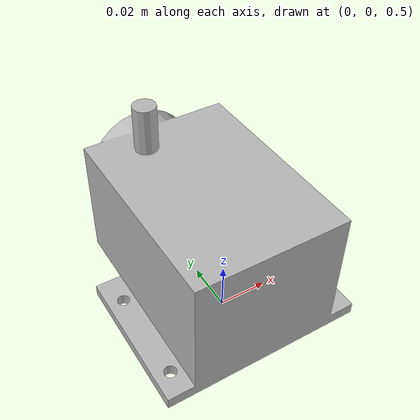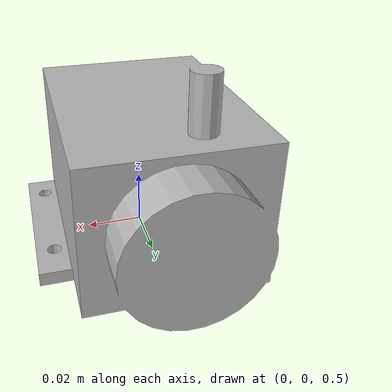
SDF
<?xml version="1.0" ?>
<sdf version="1.4">
  <world name="default">
    <include>
      <uri>model://ground_plane</uri>
    </include>

    <include>
      <uri>model://sun</uri>
    </include>

    <include>
      <uri>model://wire_sensor</uri>
    </include>
    <include>
      <uri>model://wire_sensor_mount</uri>
    </include>
  </world>
</sdf>

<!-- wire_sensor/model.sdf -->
<sdf version="1.4">
	<model name="wire_sensor">
	<pose>0 0 0.5 0 0 0</pose>
	<link name="link">
	<gravity>0</gravity>
		<visual name="visual">
			<pose>0 0 0 1.57 0 1.57 </pose>
			<geometry>
				<mesh>
					<uri>model://wire_sensor/meshes/wire_sensor.STL </uri>
				</mesh>
			</geometry>
		</visual>
	</link>
	<plugin name="WIRE_SENSOR" filename="libwire_sensor.so">
		<noise>0.1</noise>
	</plugin>
	</model>
</sdf>

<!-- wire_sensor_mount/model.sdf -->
<sdf version="1.4">
	<model name="wire_sensor_mount">
	<pose>0 0 0.5 0 0 0</pose>
	<link name="link">
	<gravity>0</gravity>
		<visual name="visual">
			<pose>0 0 0 1.57 0 1.57 </pose>
			<geometry>
				<mesh>
					<uri>model://wire_sensor_mount/meshes/wire_sensor_mount.STL </uri>
				</mesh>
			</geometry>
		</visual>
	</link>
	</model>

</sdf>
